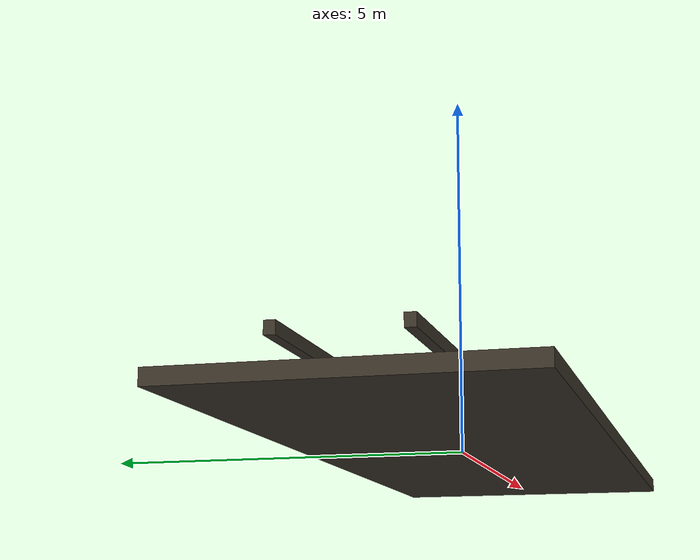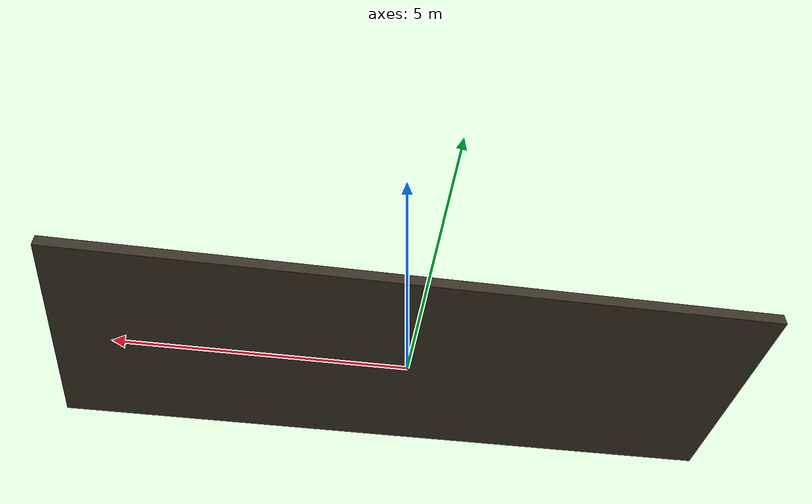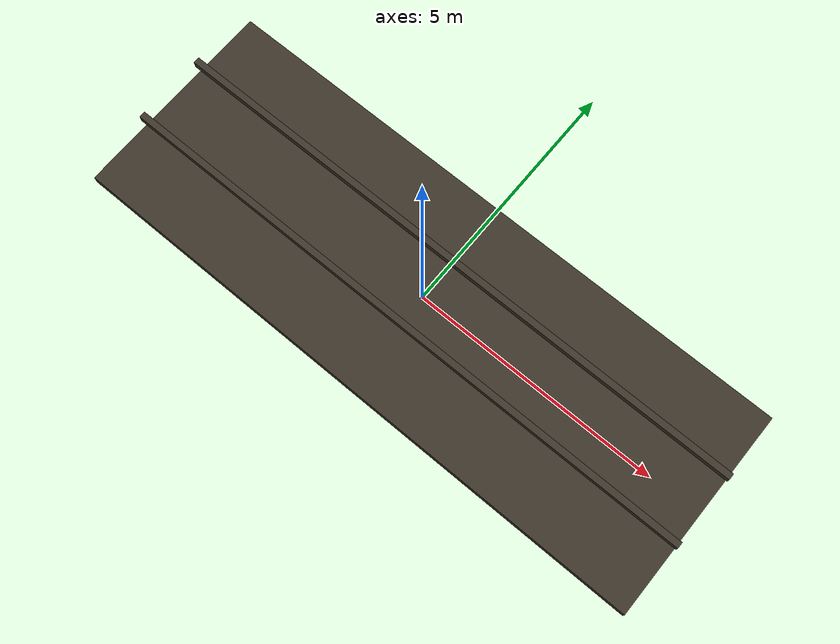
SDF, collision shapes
<?xml version="1.0"?>
<sdf version="1.9">
  <model name="track_12m">
    <static>true</static>
    <plugin filename="gz-sim-label-system" name="gz::sim::systems::Label"><label>10</label></plugin>
    <link name="detailed_track">
      <collision name="formation_collision"><pose>0 0 0.10 0 0 0</pose><geometry><box><size>12 4.2 0.20</size></box></geometry></collision>
      <collision name="rail_left_collision"><pose>0 0.7175 0.535 0 0 0</pose><geometry><box><size>12 0.127 0.153</size></box></geometry></collision>
      <collision name="rail_right_collision"><pose>0 -0.7175 0.535 0 0 0</pose><geometry><box><size>12 0.127 0.153</size></box></geometry></collision>
      <visual name="formation"><pose>0 0 0.08 0 0 0</pose><geometry><box><size>12 4.50 0.16</size></box></geometry><material><diffuse>0.22 0.19 0.15 1</diffuse><pbr><metal><roughness>1.0</roughness><metalness>0</metalness></metal></pbr></material></visual>
      <visual name="ballast_bed"><geometry><mesh><uri>model://track_12m/meshes/ballast_bed.obj</uri></mesh></geometry><material><ambient>0.38 0.38 0.36 1</ambient><diffuse>0.60 0.59 0.56 1</diffuse><pbr><metal><albedo_map>model://track_12m/materials/textures/ballast_albedo.png</albedo_map><roughness>0.98</roughness><metalness>0</metalness></metal></pbr></material></visual>
      <visual name="pc_sleeper_00_concrete"><pose>-5.700 0 0.235 0 0 0</pose><geometry><mesh><uri>model://pc_sleeper/meshes/pc_sleeper_concrete.obj</uri></mesh></geometry><material><ambient>0.47 0.47 0.45 1</ambient><diffuse>0.68 0.68 0.65 1</diffuse><pbr><metal><roughness>0.92</roughness><metalness>0</metalness></metal></pbr></material></visual>
      <visual name="pc_sleeper_00_hardware"><pose>-5.700 0 0.235 0 0 0</pose><geometry><mesh><uri>model://pc_sleeper/meshes/pc_sleeper_hardware.obj</uri></mesh></geometry><material><ambient>0.035 0.038 0.036 1</ambient><diffuse>0.10 0.11 0.10 1</diffuse><specular>0.20 0.20 0.20 1</specular><pbr><metal><roughness>0.66</roughness><metalness>0.28</metalness></metal></pbr></material></visual>
      <visual name="pc_sleeper_00_clips"><pose>-5.700 0 0.235 0 0 0</pose><geometry><mesh><uri>model://pc_sleeper/meshes/pc_sleeper_clips.obj</uri></mesh></geometry><material><ambient>0.16 0.055 0.015 1</ambient><diffuse>0.40 0.14 0.035 1</diffuse><specular>0.24 0.18 0.12 1</specular><pbr><metal><roughness>0.52</roughness><metalness>0.62</metalness></metal></pbr></material></visual>
      <visual name="pc_sleeper_01_concrete"><pose>-5.100 0 0.235 0 0 0</pose><geometry><mesh><uri>model://pc_sleeper/meshes/pc_sleeper_concrete.obj</uri></mesh></geometry><material><ambient>0.47 0.47 0.45 1</ambient><diffuse>0.68 0.68 0.65 1</diffuse><pbr><metal><roughness>0.92</roughness><metalness>0</metalness></metal></pbr></material></visual>
      <visual name="pc_sleeper_01_hardware"><pose>-5.100 0 0.235 0 0 0</pose><geometry><mesh><uri>model://pc_sleeper/meshes/pc_sleeper_hardware.obj</uri></mesh></geometry><material><ambient>0.035 0.038 0.036 1</ambient><diffuse>0.10 0.11 0.10 1</diffuse><specular>0.20 0.20 0.20 1</specular><pbr><metal><roughness>0.66</roughness><metalness>0.28</metalness></metal></pbr></material></visual>
      <visual name="pc_sleeper_01_clips"><pose>-5.100 0 0.235 0 0 0</pose><geometry><mesh><uri>model://pc_sleeper/meshes/pc_sleeper_clips.obj</uri></mesh></geometry><material><ambient>0.16 0.055 0.015 1</ambient><diffuse>0.40 0.14 0.035 1</diffuse><specular>0.24 0.18 0.12 1</specular><pbr><metal><roughness>0.52</roughness><metalness>0.62</metalness></metal></pbr></material></visual>
      <visual name="pc_sleeper_02_concrete"><pose>-4.500 0 0.235 0 0 0</pose><geometry><mesh><uri>model://pc_sleeper/meshes/pc_sleeper_concrete.obj</uri></mesh></geometry><material><ambient>0.47 0.47 0.45 1</ambient><diffuse>0.68 0.68 0.65 1</diffuse><pbr><metal><roughness>0.92</roughness><metalness>0</metalness></metal></pbr></material></visual>
      <visual name="pc_sleeper_02_hardware"><pose>-4.500 0 0.235 0 0 0</pose><geometry><mesh><uri>model://pc_sleeper/meshes/pc_sleeper_hardware.obj</uri></mesh></geometry><material><ambient>0.035 0.038 0.036 1</ambient><diffuse>0.10 0.11 0.10 1</diffuse><specular>0.20 0.20 0.20 1</specular><pbr><metal><roughness>0.66</roughness><metalness>0.28</metalness></metal></pbr></material></visual>
      <visual name="pc_sleeper_02_clips"><pose>-4.500 0 0.235 0 0 0</pose><geometry><mesh><uri>model://pc_sleeper/meshes/pc_sleeper_clips.obj</uri></mesh></geometry><material><ambient>0.16 0.055 0.015 1</ambient><diffuse>0.40 0.14 0.035 1</diffuse><specular>0.24 0.18 0.12 1</specular><pbr><metal><roughness>0.52</roughness><metalness>0.62</metalness></metal></pbr></material></visual>
      <visual name="pc_sleeper_03_concrete"><pose>-3.900 0 0.235 0 0 0</pose><geometry><mesh><uri>model://pc_sleeper/meshes/pc_sleeper_concrete.obj</uri></mesh></geometry><material><ambient>0.47 0.47 0.45 1</ambient><diffuse>0.68 0.68 0.65 1</diffuse><pbr><metal><roughness>0.92</roughness><metalness>0</metalness></metal></pbr></material></visual>
      <visual name="pc_sleeper_03_hardware"><pose>-3.900 0 0.235 0 0 0</pose><geometry><mesh><uri>model://pc_sleeper/meshes/pc_sleeper_hardware.obj</uri></mesh></geometry><material><ambient>0.035 0.038 0.036 1</ambient><diffuse>0.10 0.11 0.10 1</diffuse><specular>0.20 0.20 0.20 1</specular><pbr><metal><roughness>0.66</roughness><metalness>0.28</metalness></metal></pbr></material></visual>
      <visual name="pc_sleeper_03_clips"><pose>-3.900 0 0.235 0 0 0</pose><geometry><mesh><uri>model://pc_sleeper/meshes/pc_sleeper_clips.obj</uri></mesh></geometry><material><ambient>0.16 0.055 0.015 1</ambient><diffuse>0.40 0.14 0.035 1</diffuse><specular>0.24 0.18 0.12 1</specular><pbr><metal><roughness>0.52</roughness><metalness>0.62</metalness></metal></pbr></material></visual>
      <visual name="pc_sleeper_04_concrete"><pose>-3.300 0 0.235 0 0 0</pose><geometry><mesh><uri>model://pc_sleeper/meshes/pc_sleeper_concrete.obj</uri></mesh></geometry><material><ambient>0.47 0.47 0.45 1</ambient><diffuse>0.68 0.68 0.65 1</diffuse><pbr><metal><roughness>0.92</roughness><metalness>0</metalness></metal></pbr></material></visual>
      <visual name="pc_sleeper_04_hardware"><pose>-3.300 0 0.235 0 0 0</pose><geometry><mesh><uri>model://pc_sleeper/meshes/pc_sleeper_hardware.obj</uri></mesh></geometry><material><ambient>0.035 0.038 0.036 1</ambient><diffuse>0.10 0.11 0.10 1</diffuse><specular>0.20 0.20 0.20 1</specular><pbr><metal><roughness>0.66</roughness><metalness>0.28</metalness></metal></pbr></material></visual>
      <visual name="pc_sleeper_04_clips"><pose>-3.300 0 0.235 0 0 0</pose><geometry><mesh><uri>model://pc_sleeper/meshes/pc_sleeper_clips.obj</uri></mesh></geometry><material><ambient>0.16 0.055 0.015 1</ambient><diffuse>0.40 0.14 0.035 1</diffuse><specular>0.24 0.18 0.12 1</specular><pbr><metal><roughness>0.52</roughness><metalness>0.62</metalness></metal></pbr></material></visual>
      <visual name="pc_sleeper_05_concrete"><pose>-2.700 0 0.235 0 0 0</pose><geometry><mesh><uri>model://pc_sleeper/meshes/pc_sleeper_concrete.obj</uri></mesh></geometry><material><ambient>0.47 0.47 0.45 1</ambient><diffuse>0.68 0.68 0.65 1</diffuse><pbr><metal><roughness>0.92</roughness><metalness>0</metalness></metal></pbr></material></visual>
      <visual name="pc_sleeper_05_hardware"><pose>-2.700 0 0.235 0 0 0</pose><geometry><mesh><uri>model://pc_sleeper/meshes/pc_sleeper_hardware.obj</uri></mesh></geometry><material><ambient>0.035 0.038 0.036 1</ambient><diffuse>0.10 0.11 0.10 1</diffuse><specular>0.20 0.20 0.20 1</specular><pbr><metal><roughness>0.66</roughness><metalness>0.28</metalness></metal></pbr></material></visual>
      <visual name="pc_sleeper_05_clips"><pose>-2.700 0 0.235 0 0 0</pose><geometry><mesh><uri>model://pc_sleeper/meshes/pc_sleeper_clips.obj</uri></mesh></geometry><material><ambient>0.16 0.055 0.015 1</ambient><diffuse>0.40 0.14 0.035 1</diffuse><specular>0.24 0.18 0.12 1</specular><pbr><metal><roughness>0.52</roughness><metalness>0.62</metalness></metal></pbr></material></visual>
      <visual name="pc_sleeper_06_concrete"><pose>-2.100 0 0.235 0 0 0</pose><geometry><mesh><uri>model://pc_sleeper/meshes/pc_sleeper_concrete.obj</uri></mesh></geometry><material><ambient>0.47 0.47 0.45 1</ambient><diffuse>0.68 0.68 0.65 1</diffuse><pbr><metal><roughness>0.92</roughness><metalness>0</metalness></metal></pbr></material></visual>
      <visual name="pc_sleeper_06_hardware"><pose>-2.100 0 0.235 0 0 0</pose><geometry><mesh><uri>model://pc_sleeper/meshes/pc_sleeper_hardware.obj</uri></mesh></geometry><material><ambient>0.035 0.038 0.036 1</ambient><diffuse>0.10 0.11 0.10 1</diffuse><specular>0.20 0.20 0.20 1</specular><pbr><metal><roughness>0.66</roughness><metalness>0.28</metalness></metal></pbr></material></visual>
      <visual name="pc_sleeper_06_clips"><pose>-2.100 0 0.235 0 0 0</pose><geometry><mesh><uri>model://pc_sleeper/meshes/pc_sleeper_clips.obj</uri></mesh></geometry><material><ambient>0.16 0.055 0.015 1</ambient><diffuse>0.40 0.14 0.035 1</diffuse><specular>0.24 0.18 0.12 1</specular><pbr><metal><roughness>0.52</roughness><metalness>0.62</metalness></metal></pbr></material></visual>
      <visual name="pc_sleeper_07_concrete"><pose>-1.500 0 0.235 0 0 0</pose><geometry><mesh><uri>model://pc_sleeper/meshes/pc_sleeper_concrete.obj</uri></mesh></geometry><material><ambient>0.47 0.47 0.45 1</ambient><diffuse>0.68 0.68 0.65 1</diffuse><pbr><metal><roughness>0.92</roughness><metalness>0</metalness></metal></pbr></material></visual>
      <visual name="pc_sleeper_07_hardware"><pose>-1.500 0 0.235 0 0 0</pose><geometry><mesh><uri>model://pc_sleeper/meshes/pc_sleeper_hardware.obj</uri></mesh></geometry><material><ambient>0.035 0.038 0.036 1</ambient><diffuse>0.10 0.11 0.10 1</diffuse><specular>0.20 0.20 0.20 1</specular><pbr><metal><roughness>0.66</roughness><metalness>0.28</metalness></metal></pbr></material></visual>
      <visual name="pc_sleeper_07_clips"><pose>-1.500 0 0.235 0 0 0</pose><geometry><mesh><uri>model://pc_sleeper/meshes/pc_sleeper_clips.obj</uri></mesh></geometry><material><ambient>0.16 0.055 0.015 1</ambient><diffuse>0.40 0.14 0.035 1</diffuse><specular>0.24 0.18 0.12 1</specular><pbr><metal><roughness>0.52</roughness><metalness>0.62</metalness></metal></pbr></material></visual>
      <visual name="pc_sleeper_08_concrete"><pose>-0.900 0 0.235 0 0 0</pose><geometry><mesh><uri>model://pc_sleeper/meshes/pc_sleeper_concrete.obj</uri></mesh></geometry><material><ambient>0.47 0.47 0.45 1</ambient><diffuse>0.68 0.68 0.65 1</diffuse><pbr><metal><roughness>0.92</roughness><metalness>0</metalness></metal></pbr></material></visual>
      <visual name="pc_sleeper_08_hardware"><pose>-0.900 0 0.235 0 0 0</pose><geometry><mesh><uri>model://pc_sleeper/meshes/pc_sleeper_hardware.obj</uri></mesh></geometry><material><ambient>0.035 0.038 0.036 1</ambient><diffuse>0.10 0.11 0.10 1</diffuse><specular>0.20 0.20 0.20 1</specular><pbr><metal><roughness>0.66</roughness><metalness>0.28</metalness></metal></pbr></material></visual>
      <visual name="pc_sleeper_08_clips"><pose>-0.900 0 0.235 0 0 0</pose><geometry><mesh><uri>model://pc_sleeper/meshes/pc_sleeper_clips.obj</uri></mesh></geometry><material><ambient>0.16 0.055 0.015 1</ambient><diffuse>0.40 0.14 0.035 1</diffuse><specular>0.24 0.18 0.12 1</specular><pbr><metal><roughness>0.52</roughness><metalness>0.62</metalness></metal></pbr></material></visual>
      <visual name="pc_sleeper_09_concrete"><pose>-0.300 0 0.235 0 0 0</pose><geometry><mesh><uri>model://pc_sleeper/meshes/pc_sleeper_concrete.obj</uri></mesh></geometry><material><ambient>0.47 0.47 0.45 1</ambient><diffuse>0.68 0.68 0.65 1</diffuse><pbr><metal><roughness>0.92</roughness><metalness>0</metalness></metal></pbr></material></visual>
      <visual name="pc_sleeper_09_hardware"><pose>-0.300 0 0.235 0 0 0</pose><geometry><mesh><uri>model://pc_sleeper/meshes/pc_sleeper_hardware.obj</uri></mesh></geometry><material><ambient>0.035 0.038 0.036 1</ambient><diffuse>0.10 0.11 0.10 1</diffuse><specular>0.20 0.20 0.20 1</specular><pbr><metal><roughness>0.66</roughness><metalness>0.28</metalness></metal></pbr></material></visual>
      <visual name="pc_sleeper_09_clips"><pose>-0.300 0 0.235 0 0 0</pose><geometry><mesh><uri>model://pc_sleeper/meshes/pc_sleeper_clips.obj</uri></mesh></geometry><material><ambient>0.16 0.055 0.015 1</ambient><diffuse>0.40 0.14 0.035 1</diffuse><specular>0.24 0.18 0.12 1</specular><pbr><metal><roughness>0.52</roughness><metalness>0.62</metalness></metal></pbr></material></visual>
      <visual name="pc_sleeper_10_concrete"><pose>0.300 0 0.235 0 0 0</pose><geometry><mesh><uri>model://pc_sleeper/meshes/pc_sleeper_concrete.obj</uri></mesh></geometry><material><ambient>0.47 0.47 0.45 1</ambient><diffuse>0.68 0.68 0.65 1</diffuse><pbr><metal><roughness>0.92</roughness><metalness>0</metalness></metal></pbr></material></visual>
      <visual name="pc_sleeper_10_hardware"><pose>0.300 0 0.235 0 0 0</pose><geometry><mesh><uri>model://pc_sleeper/meshes/pc_sleeper_hardware.obj</uri></mesh></geometry><material><ambient>0.035 0.038 0.036 1</ambient><diffuse>0.10 0.11 0.10 1</diffuse><specular>0.20 0.20 0.20 1</specular><pbr><metal><roughness>0.66</roughness><metalness>0.28</metalness></metal></pbr></material></visual>
      <visual name="pc_sleeper_10_clips"><pose>0.300 0 0.235 0 0 0</pose><geometry><mesh><uri>model://pc_sleeper/meshes/pc_sleeper_clips.obj</uri></mesh></geometry><material><ambient>0.16 0.055 0.015 1</ambient><diffuse>0.40 0.14 0.035 1</diffuse><specular>0.24 0.18 0.12 1</specular><pbr><metal><roughness>0.52</roughness><metalness>0.62</metalness></metal></pbr></material></visual>
      <visual name="pc_sleeper_11_concrete"><pose>0.900 0 0.235 0 0 0</pose><geometry><mesh><uri>model://pc_sleeper/meshes/pc_sleeper_concrete.obj</uri></mesh></geometry><material><ambient>0.47 0.47 0.45 1</ambient><diffuse>0.68 0.68 0.65 1</diffuse><pbr><metal><roughness>0.92</roughness><metalness>0</metalness></metal></pbr></material></visual>
      <visual name="pc_sleeper_11_hardware"><pose>0.900 0 0.235 0 0 0</pose><geometry><mesh><uri>model://pc_sleeper/meshes/pc_sleeper_hardware.obj</uri></mesh></geometry><material><ambient>0.035 0.038 0.036 1</ambient><diffuse>0.10 0.11 0.10 1</diffuse><specular>0.20 0.20 0.20 1</specular><pbr><metal><roughness>0.66</roughness><metalness>0.28</metalness></metal></pbr></material></visual>
      <visual name="pc_sleeper_11_clips"><pose>0.900 0 0.235 0 0 0</pose><geometry><mesh><uri>model://pc_sleeper/meshes/pc_sleeper_clips.obj</uri></mesh></geometry><material><ambient>0.16 0.055 0.015 1</ambient><diffuse>0.40 0.14 0.035 1</diffuse><specular>0.24 0.18 0.12 1</specular><pbr><metal><roughness>0.52</roughness><metalness>0.62</metalness></metal></pbr></material></visual>
      <visual name="pc_sleeper_12_concrete"><pose>1.500 0 0.235 0 0 0</pose><geometry><mesh><uri>model://pc_sleeper/meshes/pc_sleeper_concrete.obj</uri></mesh></geometry><material><ambient>0.47 0.47 0.45 1</ambient><diffuse>0.68 0.68 0.65 1</diffuse><pbr><metal><roughness>0.92</roughness><metalness>0</metalness></metal></pbr></material></visual>
      <visual name="pc_sleeper_12_hardware"><pose>1.500 0 0.235 0 0 0</pose><geometry><mesh><uri>model://pc_sleeper/meshes/pc_sleeper_hardware.obj</uri></mesh></geometry><material><ambient>0.035 0.038 0.036 1</ambient><diffuse>0.10 0.11 0.10 1</diffuse><specular>0.20 0.20 0.20 1</specular><pbr><metal><roughness>0.66</roughness><metalness>0.28</metalness></metal></pbr></material></visual>
      <visual name="pc_sleeper_12_clips"><pose>1.500 0 0.235 0 0 0</pose><geometry><mesh><uri>model://pc_sleeper/meshes/pc_sleeper_clips.obj</uri></mesh></geometry><material><ambient>0.16 0.055 0.015 1</ambient><diffuse>0.40 0.14 0.035 1</diffuse><specular>0.24 0.18 0.12 1</specular><pbr><metal><roughness>0.52</roughness><metalness>0.62</metalness></metal></pbr></material></visual>
      <visual name="pc_sleeper_13_concrete"><pose>2.100 0 0.235 0 0 0</pose><geometry><mesh><uri>model://pc_sleeper/meshes/pc_sleeper_concrete.obj</uri></mesh></geometry><material><ambient>0.47 0.47 0.45 1</ambient><diffuse>0.68 0.68 0.65 1</diffuse><pbr><metal><roughness>0.92</roughness><metalness>0</metalness></metal></pbr></material></visual>
      <visual name="pc_sleeper_13_hardware"><pose>2.100 0 0.235 0 0 0</pose><geometry><mesh><uri>model://pc_sleeper/meshes/pc_sleeper_hardware.obj</uri></mesh></geometry><material><ambient>0.035 0.038 0.036 1</ambient><diffuse>0.10 0.11 0.10 1</diffuse><specular>0.20 0.20 0.20 1</specular><pbr><metal><roughness>0.66</roughness><metalness>0.28</metalness></metal></pbr></material></visual>
      <visual name="pc_sleeper_13_clips"><pose>2.100 0 0.235 0 0 0</pose><geometry><mesh><uri>model://pc_sleeper/meshes/pc_sleeper_clips.obj</uri></mesh></geometry><material><ambient>0.16 0.055 0.015 1</ambient><diffuse>0.40 0.14 0.035 1</diffuse><specular>0.24 0.18 0.12 1</specular><pbr><metal><roughness>0.52</roughness><metalness>0.62</metalness></metal></pbr></material></visual>
      <visual name="pc_sleeper_14_concrete"><pose>2.700 0 0.235 0 0 0</pose><geometry><mesh><uri>model://pc_sleeper/meshes/pc_sleeper_concrete.obj</uri></mesh></geometry><material><ambient>0.47 0.47 0.45 1</ambient><diffuse>0.68 0.68 0.65 1</diffuse><pbr><metal><roughness>0.92</roughness><metalness>0</metalness></metal></pbr></material></visual>
      <visual name="pc_sleeper_14_hardware"><pose>2.700 0 0.235 0 0 0</pose><geometry><mesh><uri>model://pc_sleeper/meshes/pc_sleeper_hardware.obj</uri></mesh></geometry><material><ambient>0.035 0.038 0.036 1</ambient><diffuse>0.10 0.11 0.10 1</diffuse><specular>0.20 0.20 0.20 1</specular><pbr><metal><roughness>0.66</roughness><metalness>0.28</metalness></metal></pbr></material></visual>
      <visual name="pc_sleeper_14_clips"><pose>2.700 0 0.235 0 0 0</pose><geometry><mesh><uri>model://pc_sleeper/meshes/pc_sleeper_clips.obj</uri></mesh></geometry><material><ambient>0.16 0.055 0.015 1</ambient><diffuse>0.40 0.14 0.035 1</diffuse><specular>0.24 0.18 0.12 1</specular><pbr><metal><roughness>0.52</roughness><metalness>0.62</metalness></metal></pbr></material></visual>
      <visual name="pc_sleeper_15_concrete"><pose>3.300 0 0.235 0 0 0</pose><geometry><mesh><uri>model://pc_sleeper/meshes/pc_sleeper_concrete.obj</uri></mesh></geometry><material><ambient>0.47 0.47 0.45 1</ambient><diffuse>0.68 0.68 0.65 1</diffuse><pbr><metal><roughness>0.92</roughness><metalness>0</metalness></metal></pbr></material></visual>
      <visual name="pc_sleeper_15_hardware"><pose>3.300 0 0.235 0 0 0</pose><geometry><mesh><uri>model://pc_sleeper/meshes/pc_sleeper_hardware.obj</uri></mesh></geometry><material><ambient>0.035 0.038 0.036 1</ambient><diffuse>0.10 0.11 0.10 1</diffuse><specular>0.20 0.20 0.20 1</specular><pbr><metal><roughness>0.66</roughness><metalness>0.28</metalness></metal></pbr></material></visual>
      <visual name="pc_sleeper_15_clips"><pose>3.300 0 0.235 0 0 0</pose><geometry><mesh><uri>model://pc_sleeper/meshes/pc_sleeper_clips.obj</uri></mesh></geometry><material><ambient>0.16 0.055 0.015 1</ambient><diffuse>0.40 0.14 0.035 1</diffuse><specular>0.24 0.18 0.12 1</specular><pbr><metal><roughness>0.52</roughness><metalness>0.62</metalness></metal></pbr></material></visual>
      <visual name="pc_sleeper_16_concrete"><pose>3.900 0 0.235 0 0 0</pose><geometry><mesh><uri>model://pc_sleeper/meshes/pc_sleeper_concrete.obj</uri></mesh></geometry><material><ambient>0.47 0.47 0.45 1</ambient><diffuse>0.68 0.68 0.65 1</diffuse><pbr><metal><roughness>0.92</roughness><metalness>0</metalness></metal></pbr></material></visual>
      <visual name="pc_sleeper_16_hardware"><pose>3.900 0 0.235 0 0 0</pose><geometry><mesh><uri>model://pc_sleeper/meshes/pc_sleeper_hardware.obj</uri></mesh></geometry><material><ambient>0.035 0.038 0.036 1</ambient><diffuse>0.10 0.11 0.10 1</diffuse><specular>0.20 0.20 0.20 1</specular><pbr><metal><roughness>0.66</roughness><metalness>0.28</metalness></metal></pbr></material></visual>
      <visual name="pc_sleeper_16_clips"><pose>3.900 0 0.235 0 0 0</pose><geometry><mesh><uri>model://pc_sleeper/meshes/pc_sleeper_clips.obj</uri></mesh></geometry><material><ambient>0.16 0.055 0.015 1</ambient><diffuse>0.40 0.14 0.035 1</diffuse><specular>0.24 0.18 0.12 1</specular><pbr><metal><roughness>0.52</roughness><metalness>0.62</metalness></metal></pbr></material></visual>
      <visual name="pc_sleeper_17_concrete"><pose>4.500 0 0.235 0 0 0</pose><geometry><mesh><uri>model://pc_sleeper/meshes/pc_sleeper_concrete.obj</uri></mesh></geometry><material><ambient>0.47 0.47 0.45 1</ambient><diffuse>0.68 0.68 0.65 1</diffuse><pbr><metal><roughness>0.92</roughness><metalness>0</metalness></metal></pbr></material></visual>
      <visual name="pc_sleeper_17_hardware"><pose>4.500 0 0.235 0 0 0</pose><geometry><mesh><uri>model://pc_sleeper/meshes/pc_sleeper_hardware.obj</uri></mesh></geometry><material><ambient>0.035 0.038 0.036 1</ambient><diffuse>0.10 0.11 0.10 1</diffuse><specular>0.20 0.20 0.20 1</specular><pbr><metal><roughness>0.66</roughness><metalness>0.28</metalness></metal></pbr></material></visual>
      <visual name="pc_sleeper_17_clips"><pose>4.500 0 0.235 0 0 0</pose><geometry><mesh><uri>model://pc_sleeper/meshes/pc_sleeper_clips.obj</uri></mesh></geometry><material><ambient>0.16 0.055 0.015 1</ambient><diffuse>0.40 0.14 0.035 1</diffuse><specular>0.24 0.18 0.12 1</specular><pbr><metal><roughness>0.52</roughness><metalness>0.62</metalness></metal></pbr></material></visual>
      <visual name="pc_sleeper_18_concrete"><pose>5.100 0 0.235 0 0 0</pose><geometry><mesh><uri>model://pc_sleeper/meshes/pc_sleeper_concrete.obj</uri></mesh></geometry><material><ambient>0.47 0.47 0.45 1</ambient><diffuse>0.68 0.68 0.65 1</diffuse><pbr><metal><roughness>0.92</roughness><metalness>0</metalness></metal></pbr></material></visual>
      <visual name="pc_sleeper_18_hardware"><pose>5.100 0 0.235 0 0 0</pose><geometry><mesh><uri>model://pc_sleeper/meshes/pc_sleeper_hardware.obj</uri></mesh></geometry><material><ambient>0.035 0.038 0.036 1</ambient><diffuse>0.10 0.11 0.10 1</diffuse><specular>0.20 0.20 0.20 1</specular><pbr><metal><roughness>0.66</roughness><metalness>0.28</metalness></metal></pbr></material></visual>
      <visual name="pc_sleeper_18_clips"><pose>5.100 0 0.235 0 0 0</pose><geometry><mesh><uri>model://pc_sleeper/meshes/pc_sleeper_clips.obj</uri></mesh></geometry><material><ambient>0.16 0.055 0.015 1</ambient><diffuse>0.40 0.14 0.035 1</diffuse><specular>0.24 0.18 0.12 1</specular><pbr><metal><roughness>0.52</roughness><metalness>0.62</metalness></metal></pbr></material></visual>
      <visual name="pc_sleeper_19_concrete"><pose>5.700 0 0.235 0 0 0</pose><geometry><mesh><uri>model://pc_sleeper/meshes/pc_sleeper_concrete.obj</uri></mesh></geometry><material><ambient>0.47 0.47 0.45 1</ambient><diffuse>0.68 0.68 0.65 1</diffuse><pbr><metal><roughness>0.92</roughness><metalness>0</metalness></metal></pbr></material></visual>
      <visual name="pc_sleeper_19_hardware"><pose>5.700 0 0.235 0 0 0</pose><geometry><mesh><uri>model://pc_sleeper/meshes/pc_sleeper_hardware.obj</uri></mesh></geometry><material><ambient>0.035 0.038 0.036 1</ambient><diffuse>0.10 0.11 0.10 1</diffuse><specular>0.20 0.20 0.20 1</specular><pbr><metal><roughness>0.66</roughness><metalness>0.28</metalness></metal></pbr></material></visual>
      <visual name="pc_sleeper_19_clips"><pose>5.700 0 0.235 0 0 0</pose><geometry><mesh><uri>model://pc_sleeper/meshes/pc_sleeper_clips.obj</uri></mesh></geometry><material><ambient>0.16 0.055 0.015 1</ambient><diffuse>0.40 0.14 0.035 1</diffuse><specular>0.24 0.18 0.12 1</specular><pbr><metal><roughness>0.52</roughness><metalness>0.62</metalness></metal></pbr></material></visual>
      <visual name="rail_left_profile"><pose>0 0.7175 0.459 0.025 0 0</pose><geometry><mesh><uri>model://track_12m/meshes/rail_profile_12m.obj</uri></mesh></geometry><material><ambient>0.13 0.09 0.065 1</ambient><diffuse>0.31 0.22 0.16 1</diffuse><specular>0.30 0.25 0.20 1</specular><pbr><metal><roughness>0.48</roughness><metalness>0.72</metalness></metal></pbr></material></visual>
      <visual name="rail_right_profile"><pose>0 -0.7175 0.459 -0.025 0 0</pose><geometry><mesh><uri>model://track_12m/meshes/rail_profile_12m.obj</uri></mesh></geometry><material><ambient>0.13 0.09 0.065 1</ambient><diffuse>0.31 0.22 0.16 1</diffuse><specular>0.30 0.25 0.20 1</specular><pbr><metal><roughness>0.48</roughness><metalness>0.72</metalness></metal></pbr></material></visual>
      <visual name="rail_left_running_band"><pose>0 0.7137 0.6155 0.025 0 0</pose><geometry><box><size>12 0.058 0.006</size></box></geometry><material><ambient>0.42 0.43 0.43 1</ambient><diffuse>0.66 0.67 0.67 1</diffuse><specular>0.92 0.92 0.92 1</specular><pbr><metal><roughness>0.18</roughness><metalness>0.92</metalness></metal></pbr></material></visual>
      <visual name="rail_right_running_band"><pose>0 -0.7137 0.6155 -0.025 0 0</pose><geometry><box><size>12 0.058 0.006</size></box></geometry><material><ambient>0.42 0.43 0.43 1</ambient><diffuse>0.66 0.67 0.67 1</diffuse><specular>0.92 0.92 0.92 1</specular><pbr><metal><roughness>0.18</roughness><metalness>0.92</metalness></metal></pbr></material></visual>
      <visual name="rail_left_gauge_wear"><pose>0 0.6835 0.586 0 0 0</pose><geometry><box><size>12 0.004 0.034</size></box></geometry><material><diffuse>0.47 0.48 0.48 1</diffuse><specular>0.72 0.72 0.72 1</specular></material></visual>
      <visual name="rail_right_gauge_wear"><pose>0 -0.6835 0.586 0 0 0</pose><geometry><box><size>12 0.004 0.034</size></box></geometry><material><diffuse>0.47 0.48 0.48 1</diffuse><specular>0.72 0.72 0.72 1</specular></material></visual>
    </link>
  </model>
</sdf>
